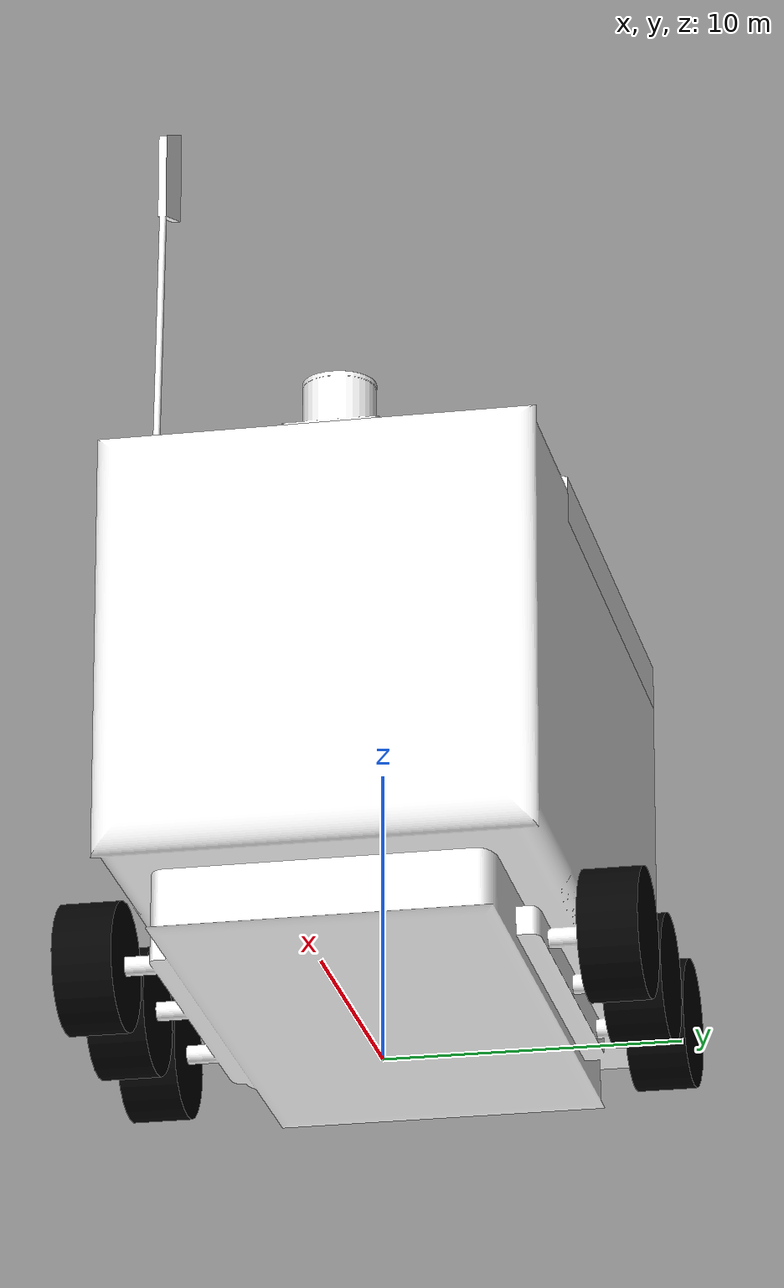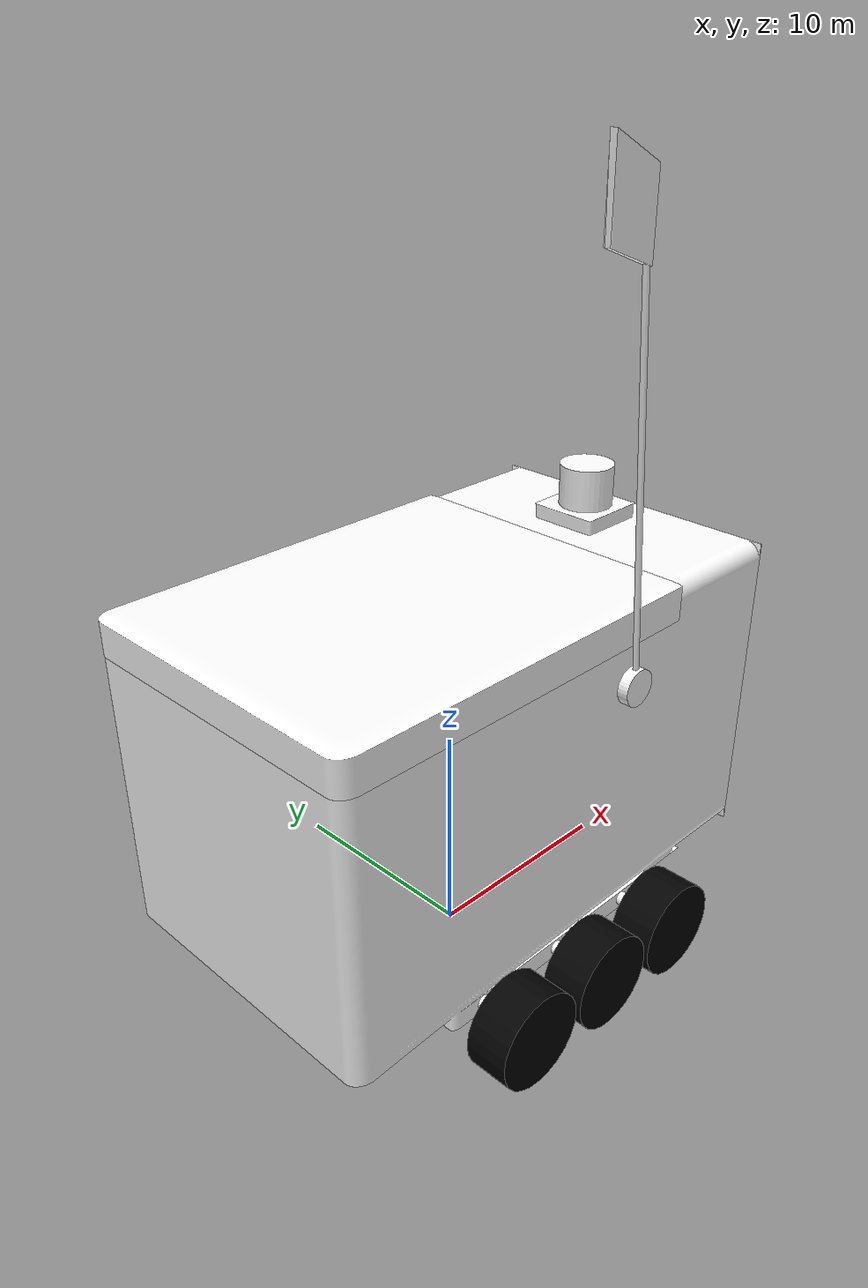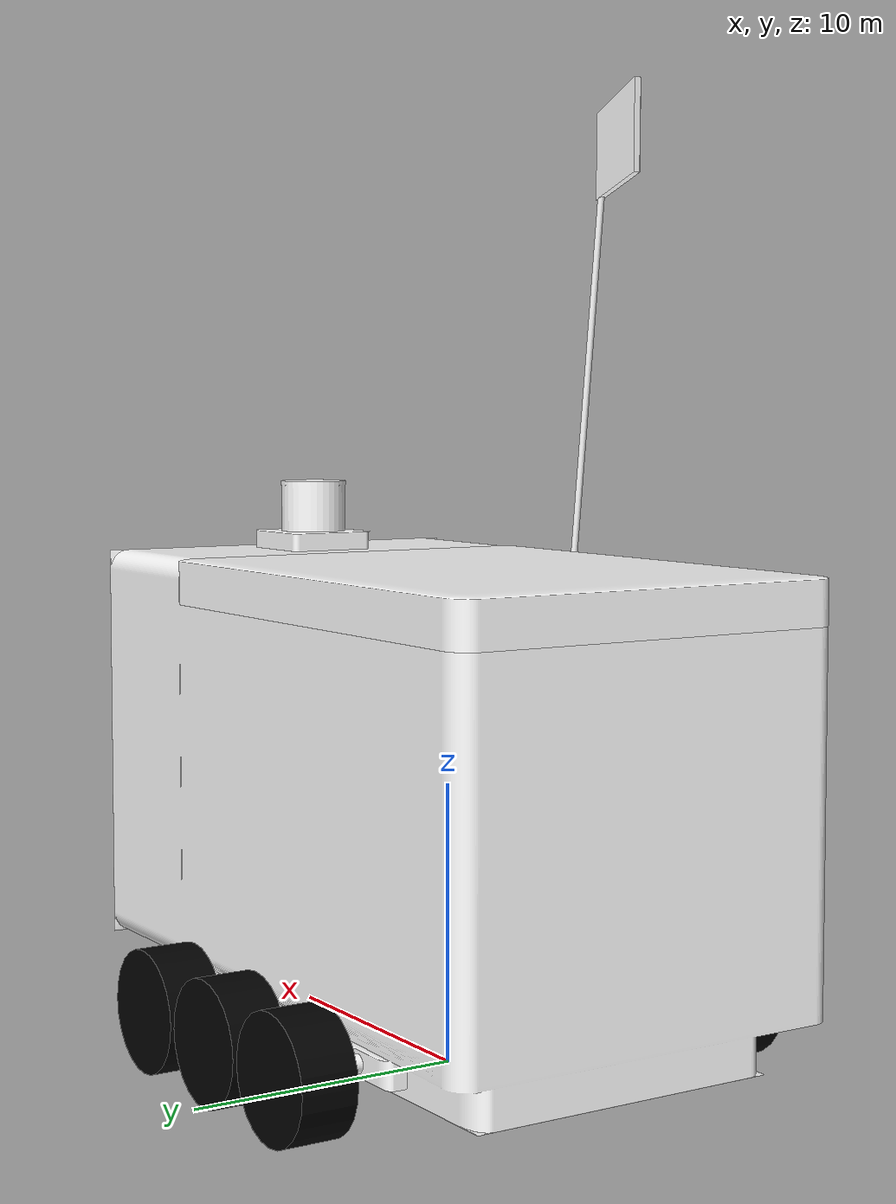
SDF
<?xml version="1.0" ?>
<sdf version="1.10">
<model name="deliverer">
    <static>false</static>

    <plugin filename="gz-sim-pose-publisher-system" name="gz::sim::systems::PosePublisher">
        <publish_link_pose>true</publish_link_pose>
        <publish_collision_pose>false</publish_collision_pose>
        <publish_visual_pose>false</publish_visual_pose>
        <publish_nested_model_pose>false</publish_nested_model_pose>
        <use_pose_vector_msg>false</use_pose_vector_msg>
    </plugin>

    <link name="base_link">
        <pose>0 0 0 0 0 0</pose>
        <visual name="visual">
            <geometry><mesh><uri>file:///home/danil/Documents/ROSWorkspaces/RosMiniProject/src/making_delivery/models/rover.obj</uri></mesh></geometry>
            <material>
                <diffuse>1 1 1 1</diffuse>
                <pbr><metal>
                    <albedo_map>resources://T_Rover_BC_4K.png</albedo_map>
                    <roughness>1</roughness>
                    <metalness>0</metalness>
                </metal></pbr>
            </material>
        </visual>
        <collision name="collision">
            <pose>0 0 8.92 0 0 0</pose>
            <geometry><box><size>24.6744 14.86332 17.8383</size></box></geometry>
        </collision>
        <inertial>
          <mass>100.0</mass>
          <inertia>
            <ixx>0.1</ixx>
            <iyy>0.1</iyy>
            <izz>0.1</izz>
          </inertia>
        </inertial>
    </link>
    <joint name="lid_joint" type="revolute">
        <parent>base_link</parent>
        <child>lid_link</child>
        <axis>
            <xyz>0 1 0</xyz>
            <limit><lower>0</lower><upper>1.29</upper></limit>
        </axis>
    </joint>
    <link name="lid_link">
        <pose>5.72194 0.139501 17.771 0 0 0</pose>
        <visual name="visual">
            <geometry><mesh><uri>file:///home/danil/Documents/ROSWorkspaces/RosMiniProject/src/making_delivery/models/lid.obj</uri></mesh></geometry>
            <material>
                <diffuse>1 1 1 1</diffuse>
                <pbr><metal>
                    <albedo_map>resources://T_Lid_BC_4K.png</albedo_map>
                    <roughness>1</roughness>
                    <metalness>0</metalness>
                </metal></pbr>
            </material>
        </visual>
        <collision name="collision">
            <pose>-9.1069095 0 -0.5 0 0 0</pose>
            <geometry><box><size>18.213819 14.57102 1.619002</size></box></geometry>
        </collision>
        <inertial>
          <mass>5.0</mass>
          <inertia>
            <ixx>0.1</ixx>
            <iyy>0.1</iyy>
            <izz>0.1</izz>
          </inertia>
        </inertial>
    </link>

    <joint name="lidar_joint" type="fixed">
        <parent>base_link</parent>
        <child>lidar_link</child>
    </joint>
    <link name="lidar_link">
        <pose>9.07392 0.361634 17.7084 0 0 0</pose>
        <visual name="visual">
            <geometry><mesh><uri>file:///home/danil/Documents/ROSWorkspaces/RosMiniProject/src/making_delivery/models/lidar.obj</uri></mesh></geometry>
            <material>
                <diffuse>1 1 1 1</diffuse>
                <pbr><metal>
                    <albedo_map>resources://T_Lidar_BC_4K.png</albedo_map>
                    <roughness>1</roughness>
                    <metalness>0</metalness>
                </metal></pbr>
            </material>
        </visual>
        <collision name="collision">
            <pose>0 0 1.5 0 0 0</pose>
            <geometry><box><size>3.5 3.5 2.36</size></box></geometry>
        </collision>
        <sensor name="gpu_lidar" type="gpu_lidar">
             <pose>0 0 1.4 0 0 0</pose>
             <topic>lidar</topic>
             <update_rate>50</update_rate>
             <ray>
                 <scan>
                     <horizontal>
                         <samples>1</samples>
                         <resolution>1</resolution>
                         <min_angle>0</min_angle>
                         <max_angle>6.28</max_angle>
                     </horizontal>
                     <vertical>
                         <samples>1</samples>
                         <resolution>1</resolution>
                         <min_angle>0</min_angle>
                         <max_angle>6.28</max_angle>
                     </vertical>
                 </scan>
                 <range>
                     <min>1</min>
                     <max>20</max>
                     <resolution>0.01</resolution>
                 </range>
             </ray>
             <always_on>1</always_on>
             <visualize>true</visualize>
        </sensor>
    </link>

    <joint name="flag_joint" type="fixed">
        <parent>base_link</parent>
        <child>flag_link</child>
    </joint>
    <link name="flag_link">
        <pose>3.0149 -7.38887 14.4931 0 0 0</pose>
        <visual name="visual">
            <geometry><mesh><uri>file:///home/danil/Documents/ROSWorkspaces/RosMiniProject/src/making_delivery/models/flag.obj</uri></mesh></geometry>
            <material>
                <diffuse>1 1 1 1</diffuse>
                <pbr><metal>
                    <albedo_map>resources://T_Flag_BC_4K.png</albedo_map>
                    <roughness>1</roughness>
                    <metalness>0</metalness>
                </metal></pbr>
            </material>
        </visual>
    </link>

    <joint name="right_back_wheel_joint" type="revolute">
        <parent>base_link</parent>
        <child>right_back_wheel_link</child>
        <axis><xyz>0 0 1</xyz></axis>
    </joint>
    <link name="right_back_wheel_link">
        <pose>-4.61739 -8.67886 2.18565 1.57 0 0</pose>
        <visual name="visual">
            <geometry><cylinder><radius>2.18565</radius><length>2</length></cylinder></geometry>
            <material>
                <diffuse>0.01 0.01 0.01 1</diffuse>
                <pbr><metal>
                    <roughness>0</roughness>
                    <metalness>0</metalness>
                </metal></pbr>
            </material>
        </visual>
        <collision name="collision">
            <geometry><cylinder><radius>2.18565</radius><length>2</length></cylinder></geometry>
        </collision>
    </link>

    <joint name="right_middle_wheel_joint" type="revolute">
        <parent>base_link</parent>
        <child>right_middle_wheel_link</child>
        <axis><xyz>0 0 1</xyz></axis>
    </joint>
    <link name="right_middle_wheel_link">
        <pose>0 -8.67886 2.18565 1.57 0 0</pose>
        <visual name="visual">
            <geometry><cylinder><radius>2.18565</radius><length>2</length></cylinder></geometry>
            <material>
                <diffuse>0.01 0.01 0.01 1</diffuse>
                <pbr><metal>
                    <roughness>0</roughness>
                    <metalness>0</metalness>
                </metal></pbr>
            </material>
        </visual>
        <collision name="collision">
            <geometry><cylinder><radius>2.18565</radius><length>2</length></cylinder></geometry>
        </collision>
    </link>

    <joint name="right_front_wheel_joint" type="revolute">
        <parent>base_link</parent>
        <child>right_front_wheel_link</child>
        <axis><xyz>0 0 1</xyz></axis>
    </joint>
    <link name="right_front_wheel_link">
        <pose>4.61739 -8.67886 2.18565 1.57 0 0</pose>
        <visual name="visual">
            <geometry><cylinder><radius>2.18565</radius><length>2</length></cylinder></geometry>
            <material>
                <diffuse>0.01 0.01 0.01 1</diffuse>
                <pbr><metal>
                    <roughness>0</roughness>
                    <metalness>0</metalness>
                </metal></pbr>
            </material>
        </visual>
        <collision name="collision">
            <geometry><cylinder><radius>2.18565</radius><length>2</length></cylinder></geometry>
        </collision>
    </link>

    <joint name="left_back_wheel_joint" type="revolute">
        <parent>base_link</parent>
        <child>left_back_wheel_link</child>
        <axis><xyz>0 0 1</xyz></axis>
    </joint>
    <link name="left_back_wheel_link">
        <pose>-4.61739 8.67886 2.18565 1.57 0 0</pose>
        <visual name="visual">
            <geometry><cylinder><radius>2.18565</radius><length>2</length></cylinder></geometry>
            <material>
                <diffuse>0.01 0.01 0.01 1</diffuse>
                <pbr><metal>
                    <roughness>0</roughness>
                    <metalness>0</metalness>
                </metal></pbr>
            </material>
        </visual>
        <collision name="collision">
            <geometry><cylinder><radius>2.18565</radius><length>2</length></cylinder></geometry>
        </collision>
    </link>

    <joint name="left_middle_wheel_joint" type="revolute">
        <parent>base_link</parent>
        <child>left_middle_wheel_link</child>
        <axis><xyz>0 0 1</xyz></axis>
    </joint>
    <link name="left_middle_wheel_link">
        <pose>0 8.67886 2.18565 1.57 0 0</pose>
        <visual name="visual">
            <geometry><cylinder><radius>2.18565</radius><length>2</length></cylinder></geometry>
            <material>
                <diffuse>0.01 0.01 0.01 1</diffuse>
                <pbr><metal>
                    <roughness>0</roughness>
                    <metalness>0</metalness>
                </metal></pbr>
            </material>
        </visual>
        <collision name="collision">
            <geometry><cylinder><radius>2.18565</radius><length>2</length></cylinder></geometry>
        </collision>
    </link>

    <joint name="left_front_wheel_joint" type="revolute">
        <parent>base_link</parent>
        <child>left_front_wheel_link</child>
        <axis><xyz>0 0 1</xyz></axis>
    </joint>
    <link name="left_front_wheel_link">
        <pose>4.61739 8.67886 2.18565 1.57 0 0</pose>
        <visual name="visual">
            <geometry><cylinder><radius>2.18565</radius><length>2</length></cylinder></geometry>
            <material>
                <diffuse>0.01 0.01 0.01 1</diffuse>
                <pbr><metal>
                    <roughness>0</roughness>
                    <metalness>0</metalness>
                </metal></pbr>
            </material>
        </visual>
        <collision name="collision">
            <geometry><cylinder><radius>2.18565</radius><length>2</length></cylinder></geometry>
        </collision>
    </link>

</model>
</sdf>
